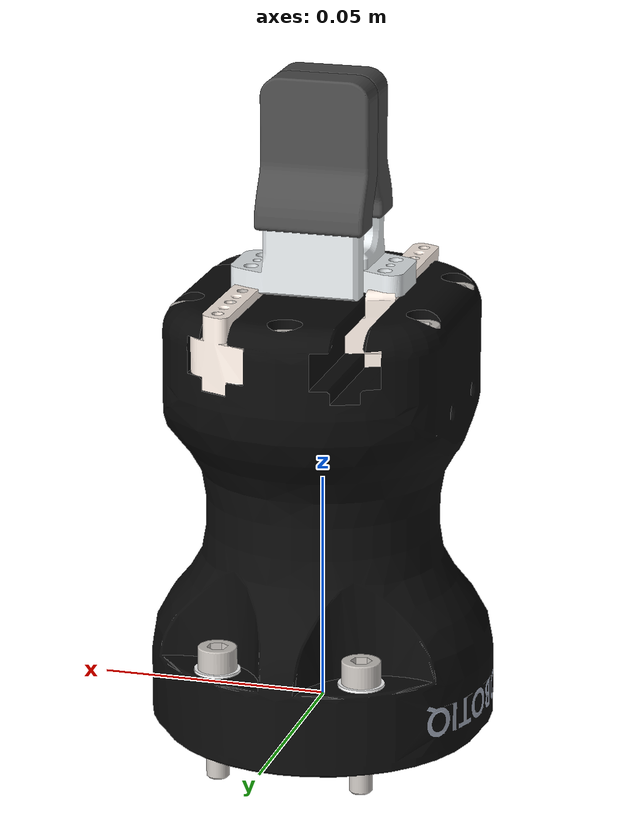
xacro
<?xml version="1.0" ?>

<!--
    Please note that the base link of the 2f gripper is
    "${prefix}robotiq_85_adapter_link"
 -->

<robot name="robotiq_model" xmlns:xacro="http://ros.org/wiki/xacro">
    <xacro:include filename="$(find robotiq_2f_hand_e_gripper_visualization)/urdf/robotiq_model_macro.xacro" />
    <xacro:robotiq_model prefix=""/>
</robot>

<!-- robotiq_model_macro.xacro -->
<!--
  robotiq_model(prefix)
-->

<robot xmlns:xacro="http://ros.org/wiki/xacro">
  <xacro:macro name="robotiq_model" params="prefix">

    <link name="${prefix}robotiq_85_base_link">
      <visual>
        <geometry>
          <mesh filename="package://robotiq_2f_hand_e_gripper_visualization/meshes/robotiq/visual/hand-e_base.dae"/>
        </geometry>
        <origin rpy="1.5707 0 0" xyz="0 0 0.08"/>
      </visual>
      <collision>
        <geometry>
          <mesh filename="package://robotiq_2f_hand_e_gripper_visualization/meshes/robotiq/collision/hand-e_base.dae"/>
        </geometry>
        <origin rpy="1.5707 0 0" xyz="0 0 0.08"/>
      </collision>
    </link>

    <link name="${prefix}robotiq_85_left_fingertips_link">
      <visual>
        <geometry>
          <mesh filename="package://robotiq_2f_hand_e_gripper_visualization/meshes/robotiq/visual/fingertips.dae"/>
        </geometry>
        <origin rpy="0 1.5707 1.5707" xyz="0 0 0.045"/>
      </visual>
      <collision>
        <geometry>
          <mesh filename="package://robotiq_2f_hand_e_gripper_visualization/meshes/robotiq/visual/fingertips.dae"/>
        </geometry>
        <origin rpy="0 1.5707 1.5707" xyz="0 0 0.045"/>
      </collision>
    </link>

    <link name="${prefix}robotiq_85_right_fingertips_link">
      <visual>
        <geometry>
          <mesh filename="package://robotiq_2f_hand_e_gripper_visualization/meshes/robotiq/visual/fingertips.dae"/>
        </geometry>
        <origin rpy="0 1.5707 1.5707" xyz="0 0 0.045"/>
      </visual>
      <collision>
        <geometry>
          <mesh filename="package://robotiq_2f_hand_e_gripper_visualization/meshes/robotiq/visual/fingertips.dae"/>
        </geometry>
        <origin rpy="0 1.5707 1.5707" xyz="0 0 0.045"/>
      </collision>
    </link>
    <joint name="${prefix}robotiq_85_left_fingertips_joint" type="prismatic">
      <parent link="${prefix}robotiq_85_base_link"/>
      <child link="${prefix}robotiq_85_left_fingertips_link"/>
      <origin rpy="0 0 0" xyz="0 -0.0055 0.0936"/>
      <axis xyz="0 1 0"/>
      <limit lower="0" upper="0.0245" velocity="0.01" effort="1000"/>
    </joint>

    <joint name="${prefix}robotiq_85_right_fingertips_joint" type="prismatic">
      <parent link="${prefix}robotiq_85_base_link"/>
      <child link="${prefix}robotiq_85_right_fingertips_link"/>
      <origin rpy="0 0 3.14" xyz="0 0.0055 0.0936"/>
      <axis xyz="0 1 0"/>
      <limit lower="0" upper="0.0245" velocity="0.01" effort="1000"/>
    </joint>
  </xacro:macro>
</robot>
